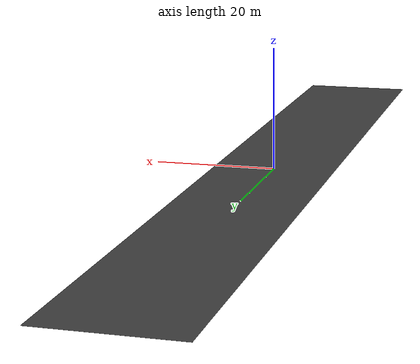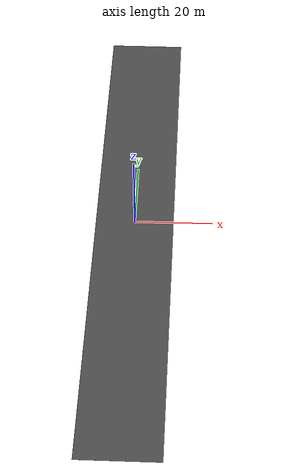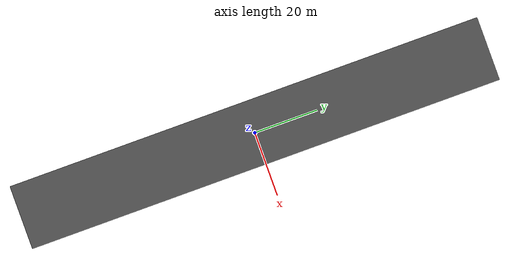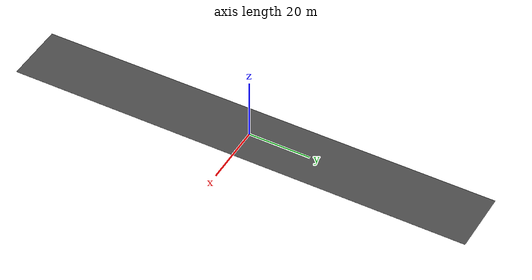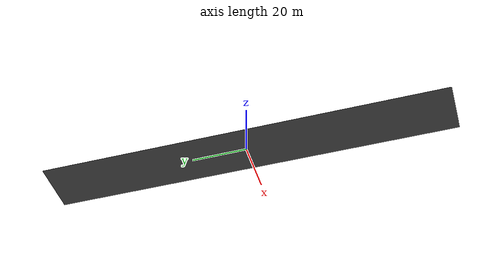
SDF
<?xml version="1.0" ?>
<sdf version="1.5">
  <model name="asphalt_plane">
    <static>true</static>
    <link name="link">
      <collision name="collision">
        <geometry>
          <box>
            <size>20 150 0.01</size>
          </box>
        </geometry>
      </collision>
      <visual name="visual">
        <cast_shadows>false</cast_shadows>
        <geometry>
          <box>
            <size>20 150 0.01</size>
          </box>
        </geometry>
        <material>
          <script>
            <uri>model://asphalt_plane/materials/scripts</uri>
            <uri>model://asphalt_plane/materials/textures</uri>
            <name>vrc/asphalt</name>
          </script>
        </material>
      </visual>
    </link>
  </model>
</sdf>
